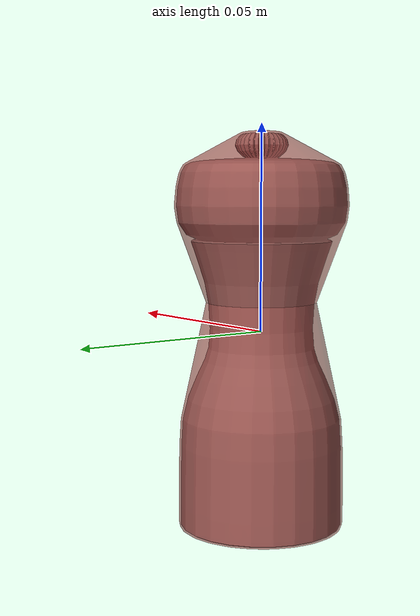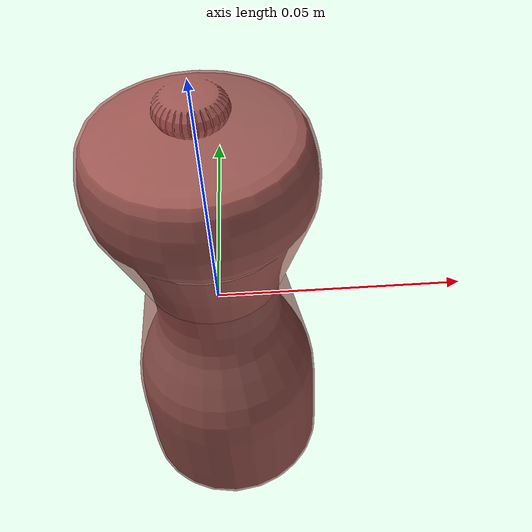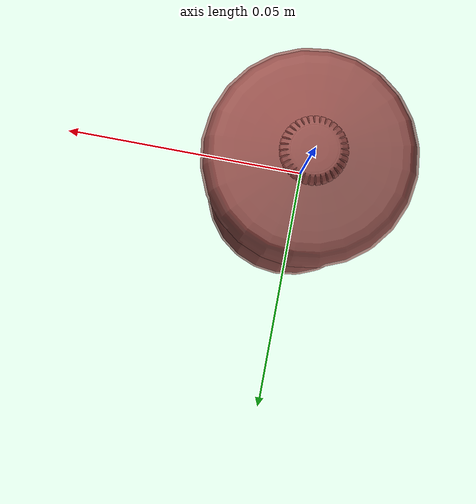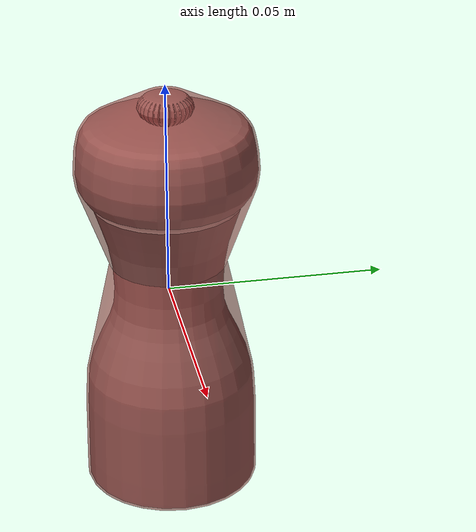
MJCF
<mujoco model="model">
  <option timestep="0.002" gravity="0.0 0.0 -9.81"/>
  <compiler angle="radian"/>
  <asset>
    <mesh file="visual/PepperShaker012.obj" name="PepperShaker012_vis"/>
    <texture file="visual/T_BC001.png" name="PepperShaker012_material" type="2d"/>
    <material name="PepperShaker012_material" rgba="1 1 1 1.0" texture="PepperShaker012_material" shininess="0.5" specular="0.3103448502657381"/>
    <mesh file="collision/collision_mesh_collision_0.obj" name="PepperShaker012_collision_mesh_0"/>
    <mesh file="collision/collision_mesh_collision_1.obj" name="PepperShaker012_collision_mesh_1"/>
  </asset>
  <default>
    <default class="visual">
      <geom conaffinity="0" contype="0" group="1" type="mesh"/>
    </default>
    <default class="collision">
      <geom group="0" rgba="0.5 0 0 0.5" density="1000.0"/>
    </default>
    <default class="spawn">
      <geom group="0" rgba="1 1 1 0.5" contype="0" conaffinity="0"/>
      <site group="0" rgba="1 1 1 0.5"/>
    </default>
    <default class="region">
      <geom group="1" conaffinity="0" contype="0" rgba="0 1 0 0" mass="0"/>
    </default>
  </default>
  <worldbody>
    <body>
      <body name="object">
        <geom mesh="PepperShaker012_vis" type="mesh" solimp="0.998 0.998 0.001" solref="0.001 1" friction="0.95 0.3 0.1" class="visual" material="PepperShaker012_material"/>
        <geom class="region" name="reg_bbox" type="box" pos="0.0 0.0 -9.555000000001368e-06" size="0.02101995 0.02101995 0.048262285"/>
        <geom mesh="PepperShaker012_collision_mesh_0" type="mesh" class="collision"/>
        <geom mesh="PepperShaker012_collision_mesh_1" type="mesh" class="collision"/>
      </body>
    </body>
  </worldbody>
  <actuator/>
</mujoco>
